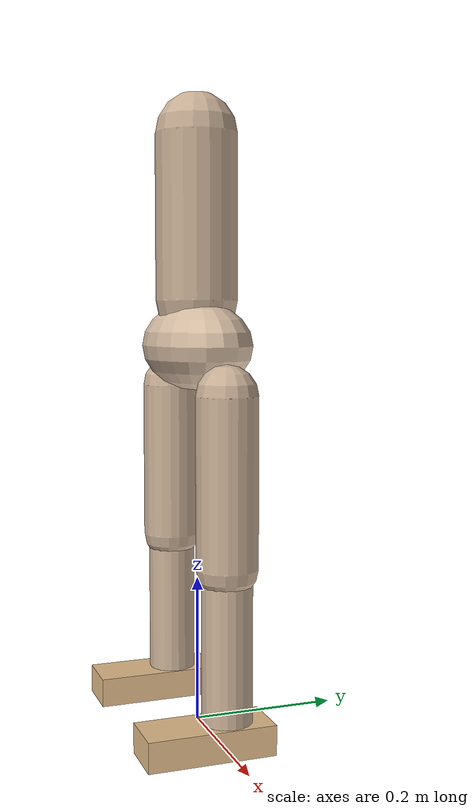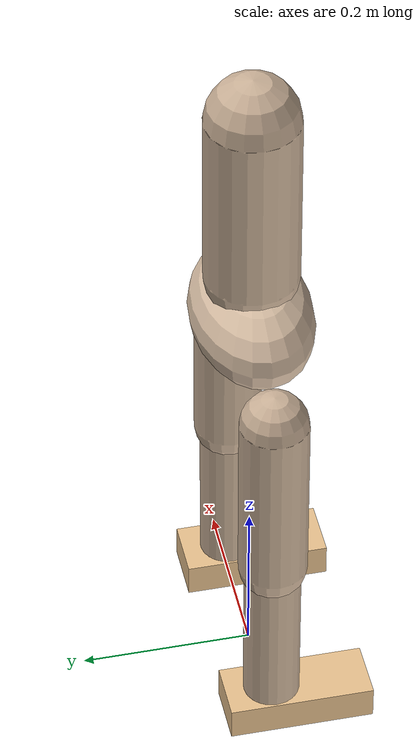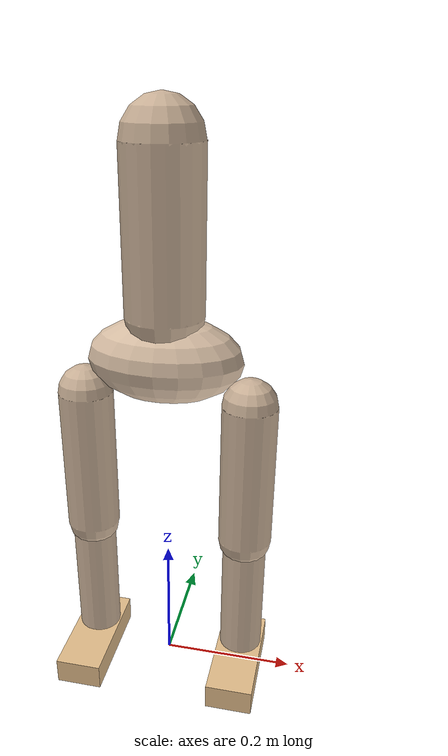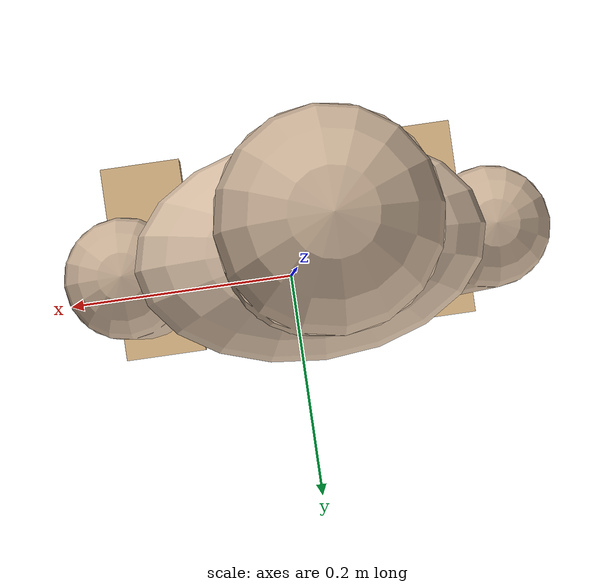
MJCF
<?xml version='1.0' encoding='utf-8'?>
<mujoco model="ChildBiped">
  <compiler angle="radian" inertiafromgeom="true" />

  <default>
    <joint limited="true" damping="2.0" armature="0.01" />
    <geom contype="1" conaffinity="1" condim="3" density="1000"
          friction="0.8 0.1 0.1" />
    <position ctrlrange="-1 1" kp="80" />
  </default>

  <worldbody>
    <body name="base" pos="0 0 0.52">
      <freejoint name="root" />

      <!-- Pelvis: wide ellipsoid (22cm wide to match widened stance) -->
      <geom name="pelvis" type="ellipsoid" size="0.11 0.07 0.06"
            rgba="0.85 0.75 0.65 1.0" mass="2.0" />

      <!-- IMU site for gyro/accel sensors -->
      <site name="imu" pos="0 0 0" />

      <!-- Forward-facing camera (looks in -Y = forward) -->
      <camera name="camera_1_cam" fovy="90.0"
              pos="0 -0.10 0.20" euler="-1.5707963 0 3.14159265" />

      <!-- === UPPER BODY (waist: 2 DOF) === -->
      <body name="upper_body" pos="0 0 0.06">
        <joint name="waist_tilt" type="hinge" axis="1 0 0"
               pos="0 0 0" range="-0.3 0.3" />
        <joint name="waist_twist" type="hinge" axis="0 0 1"
               pos="0 0 0" range="-0.3 0.3" />
        <geom name="trunk" type="capsule" fromto="0 0 0 0 0 0.22"
              size="0.055" rgba="0.8 0.7 0.6 1.0" mass="10.0" />
      </body>

      <!-- === LEFT LEG === -->
      <!-- Hip at 12cm left of center, 6cm below pelvis center -->
      <body name="left_upper_leg" pos="-0.12 0 -0.06">
        <joint name="left_hip_abd" type="hinge" axis="0 1 0"
               pos="0 0 0" range="-0.5 0.5" />
        <joint name="left_hip_flex" type="hinge" axis="1 0 0"
               pos="0 0 0" range="-1.0 0.8" />
        <joint name="left_hip_rot" type="hinge" axis="0 0 1"
               pos="0 0 0" range="-0.4 0.4" />
        <geom name="left_upper_leg" type="capsule" fromto="0 0 0 0 0 -0.22"
              size="0.04" rgba="0.8 0.7 0.6 1.0" />

        <!-- Knee at bottom of thigh (22cm down) -->
        <body name="left_lower_leg" pos="0 0 -0.22">
          <joint name="left_knee" type="hinge" axis="1 0 0"
                 pos="0 0 0" range="0 2.0" />
          <geom name="left_lower_leg" type="capsule" fromto="0 0 0 0 0 -0.20"
                size="0.033" rgba="0.8 0.7 0.6 1.0" />

          <!-- Ankle at bottom of shin (20cm down) -->
          <body name="left_foot" pos="0 0 -0.20">
            <joint name="left_ankle" type="hinge" axis="1 0 0"
                   pos="0 0 0" range="-0.5 0.5" />
            <!-- Box foot: 7cm wide x 17cm long x 4cm tall
                 pos: 3cm forward (-Y), 2cm below ankle
                 Bottom at ankle_z - 0.02 - 0.02 = 0.04 - 0.04 = 0.00 -->
            <geom name="left_foot" type="box"
                  size="0.035 0.085 0.02"
                  pos="0 -0.03 -0.02"
                  rgba="0.9 0.75 0.55 1.0"
                  friction="1.2 0.3 0.1" mass="0.3" />
          </body>
        </body>
      </body>

      <!-- === RIGHT LEG (mirror of left) === -->
      <body name="right_upper_leg" pos="0.12 0 -0.06">
        <joint name="right_hip_abd" type="hinge" axis="0 1 0"
               pos="0 0 0" range="-0.5 0.5" />
        <joint name="right_hip_flex" type="hinge" axis="1 0 0"
               pos="0 0 0" range="-1.0 0.8" />
        <joint name="right_hip_rot" type="hinge" axis="0 0 1"
               pos="0 0 0" range="-0.4 0.4" />
        <geom name="right_upper_leg" type="capsule" fromto="0 0 0 0 0 -0.22"
              size="0.04" rgba="0.8 0.7 0.6 1.0" />

        <body name="right_lower_leg" pos="0 0 -0.22">
          <joint name="right_knee" type="hinge" axis="1 0 0"
                 pos="0 0 0" range="0 2.0" />
          <geom name="right_lower_leg" type="capsule" fromto="0 0 0 0 0 -0.20"
                size="0.033" rgba="0.8 0.7 0.6 1.0" />

          <body name="right_foot" pos="0 0 -0.20">
            <joint name="right_ankle" type="hinge" axis="1 0 0"
                   pos="0 0 0" range="-0.5 0.5" />
            <geom name="right_foot" type="box"
                  size="0.035 0.085 0.02"
                  pos="0 -0.03 -0.02"
                  rgba="0.9 0.75 0.55 1.0"
                  friction="1.2 0.3 0.1" mass="0.3" />
          </body>
        </body>
      </body>
    </body>
  </worldbody>

  <contact>
    <!-- Adjacent body exclusions -->
    <exclude body1="base" body2="upper_body" />
    <exclude body1="base" body2="left_upper_leg" />
    <exclude body1="base" body2="right_upper_leg" />
    <exclude body1="left_upper_leg" body2="left_lower_leg" />
    <exclude body1="left_lower_leg" body2="left_foot" />
    <exclude body1="right_upper_leg" body2="right_lower_leg" />
    <exclude body1="right_lower_leg" body2="right_foot" />
    <!-- Inner thighs + upper body vs thighs -->
    <exclude body1="left_upper_leg" body2="right_upper_leg" />
    <exclude body1="upper_body" body2="left_upper_leg" />
    <exclude body1="upper_body" body2="right_upper_leg" />
  </contact>

  <actuator>
    <!-- 12 position actuators with per-joint kp tuning -->

    <!-- Waist: joint range ±0.3 rad -->
    <position name="waist_tilt_motor"  joint="waist_tilt"  kp="70" ctrlrange="-0.3 0.3" />
    <position name="waist_twist_motor" joint="waist_twist" kp="70" ctrlrange="-0.3 0.3" />

    <!-- Left leg: ctrlrange matched to joint range -->
    <position name="left_hip_abd_motor"  joint="left_hip_abd"  kp="60" ctrlrange="-0.5 0.5" />
    <position name="left_hip_flex_motor" joint="left_hip_flex" kp="90" ctrlrange="-1.0 0.8" />
    <position name="left_hip_rot_motor"  joint="left_hip_rot"  kp="45" ctrlrange="-0.4 0.4" />
    <position name="left_knee_motor"     joint="left_knee"     kp="90" ctrlrange="0 2.0" />
    <position name="left_ankle_motor"    joint="left_ankle"    kp="70" ctrlrange="-0.5 0.5" />

    <!-- Right leg: ctrlrange matched to joint range -->
    <position name="right_hip_abd_motor"  joint="right_hip_abd"  kp="60" ctrlrange="-0.5 0.5" />
    <position name="right_hip_flex_motor" joint="right_hip_flex" kp="90" ctrlrange="-1.0 0.8" />
    <position name="right_hip_rot_motor"  joint="right_hip_rot"  kp="45" ctrlrange="-0.4 0.4" />
    <position name="right_knee_motor"     joint="right_knee"     kp="90" ctrlrange="0 2.0" />
    <position name="right_ankle_motor"    joint="right_ankle"    kp="70" ctrlrange="-0.5 0.5" />
  </actuator>

  <sensor>
    <!-- Joint positions (12) -->
    <jointpos name="waist_tilt_pos"      joint="waist_tilt" />
    <jointpos name="waist_twist_pos"     joint="waist_twist" />
    <jointpos name="left_hip_abd_pos"    joint="left_hip_abd" />
    <jointpos name="left_hip_flex_pos"   joint="left_hip_flex" />
    <jointpos name="left_hip_rot_pos"    joint="left_hip_rot" />
    <jointpos name="left_knee_pos"       joint="left_knee" />
    <jointpos name="left_ankle_pos"      joint="left_ankle" />
    <jointpos name="right_hip_abd_pos"   joint="right_hip_abd" />
    <jointpos name="right_hip_flex_pos"  joint="right_hip_flex" />
    <jointpos name="right_hip_rot_pos"   joint="right_hip_rot" />
    <jointpos name="right_knee_pos"      joint="right_knee" />
    <jointpos name="right_ankle_pos"     joint="right_ankle" />

    <!-- Joint velocities (12) -->
    <jointvel name="waist_tilt_vel"      joint="waist_tilt" />
    <jointvel name="waist_twist_vel"     joint="waist_twist" />
    <jointvel name="left_hip_abd_vel"    joint="left_hip_abd" />
    <jointvel name="left_hip_flex_vel"   joint="left_hip_flex" />
    <jointvel name="left_hip_rot_vel"    joint="left_hip_rot" />
    <jointvel name="left_knee_vel"       joint="left_knee" />
    <jointvel name="left_ankle_vel"      joint="left_ankle" />
    <jointvel name="right_hip_abd_vel"   joint="right_hip_abd" />
    <jointvel name="right_hip_flex_vel"  joint="right_hip_flex" />
    <jointvel name="right_hip_rot_vel"   joint="right_hip_rot" />
    <jointvel name="right_knee_vel"      joint="right_knee" />
    <jointvel name="right_ankle_vel"     joint="right_ankle" />

    <!-- IMU (6) -->
    <gyro          name="torso_gyro"  site="imu" />
    <accelerometer name="torso_accel" site="imu" />
  </sensor>
</mujoco>
